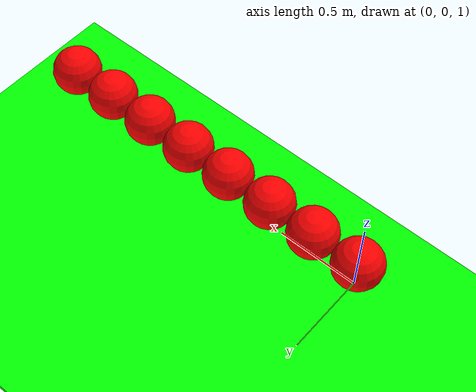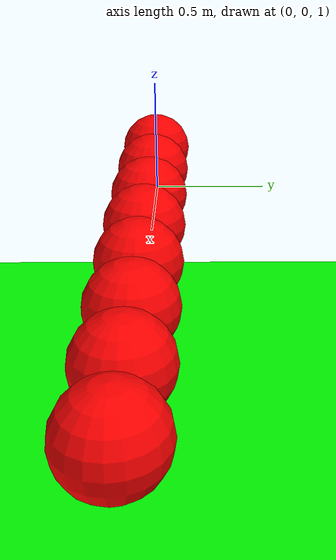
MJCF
<?xml version="1.0" ?>
<mujoco>
    <option timestep="0.005" />
    <worldbody>
        <body name="s1" pos="0 0 1.2">
            <joint type="free" stiffness="0" damping="0" frictionloss="0.1" armature="0"/>
            <geom mass="1.0" friction="1 1 1" pos="0 0 0" rgba="1 0 0 1" size="0.15" type="sphere"/>
			<camera euler="0 0 0" fovy="40" name="rgb" pos="0 0 2.5"></camera>
        </body>
        <body name="s2" pos="0.3 0 1.2">
            <joint type="free" stiffness="0" damping="0" frictionloss="0.1" armature="0"/>
            <geom mass="1.0"   pos="0 0 0" rgba="1 0 0 1" size="0.15" type="sphere"/>
        </body>
        <body name="s3" pos="0.6 0 1.2">
            <joint type="free" stiffness="0" damping="0" frictionloss="0.1" armature="0"/>
            <geom mass="1.0"  pos="0 0 0" rgba="1 0 0 1" size="0.15" type="sphere"/>
        </body>
        <body name="s4" pos="0.9 0 1.2">
            <joint type="free" stiffness="0" damping="0" frictionloss="0.1" armature="0"/>
            <geom mass="1.0"  pos="0 0 0" rgba="1 0 0 1" size="0.15" type="sphere"/>
        </body>
        <body name="s5" pos="1.2 0 1.2">
            <joint type="free" stiffness="0" damping="0" frictionloss="0.1" armature="0"/>
            <geom mass="1.0"  pos="0 0 0" rgba="1 0 0 1" size="0.15" type="sphere"/>
        </body>
        <body name="s6" pos="1.5 0 1.2">
            <joint type="free" stiffness="0" damping="0" frictionloss="0.1" armature="0"/>
            <geom mass="1.0"  pos="0 0 0" rgba="1 0 0 1" size="0.15" type="sphere"/>
        </body>
        <body name="s7" pos="1.8 0 1.2">
            <joint type="free" stiffness="0" damping="0" frictionloss="0.1" armature="0"/>
            <geom mass="1.0"  pos="0 0 0" rgba="1 0 0 1" size="0.15" type="sphere"/>
        </body>
        <body name="s8" pos="2.1 0 1.2">
            <joint type="free" stiffness="0" damping="0" frictionloss="0.1" armature="0"/>
            <geom mass="1.0"  pos="0 0 0" rgba="1 0 0 1" size="0.15" type="sphere"/>
        </body>
        <body name="floor" pos="-5 -5 0.025">
            <geom condim="3" size="10.0 10.0 0.02" rgba="0 1 0 1" type="box"/>
        </body>
    </worldbody>
</mujoco>
